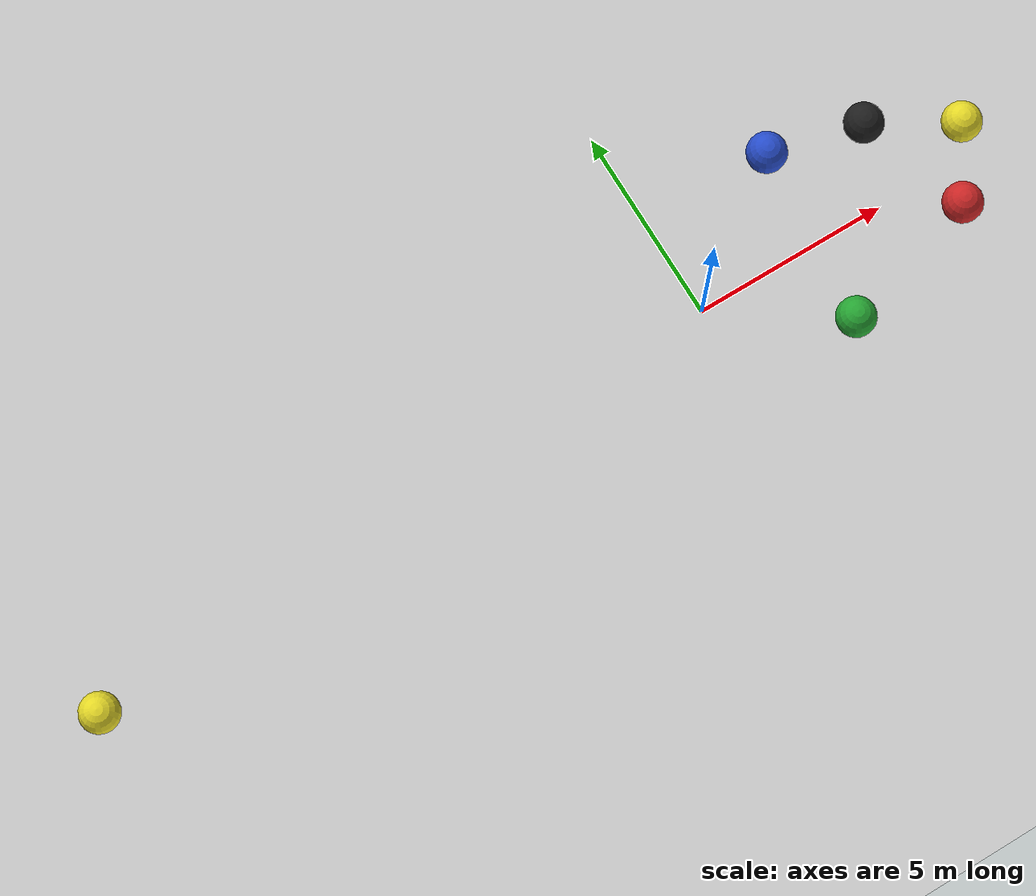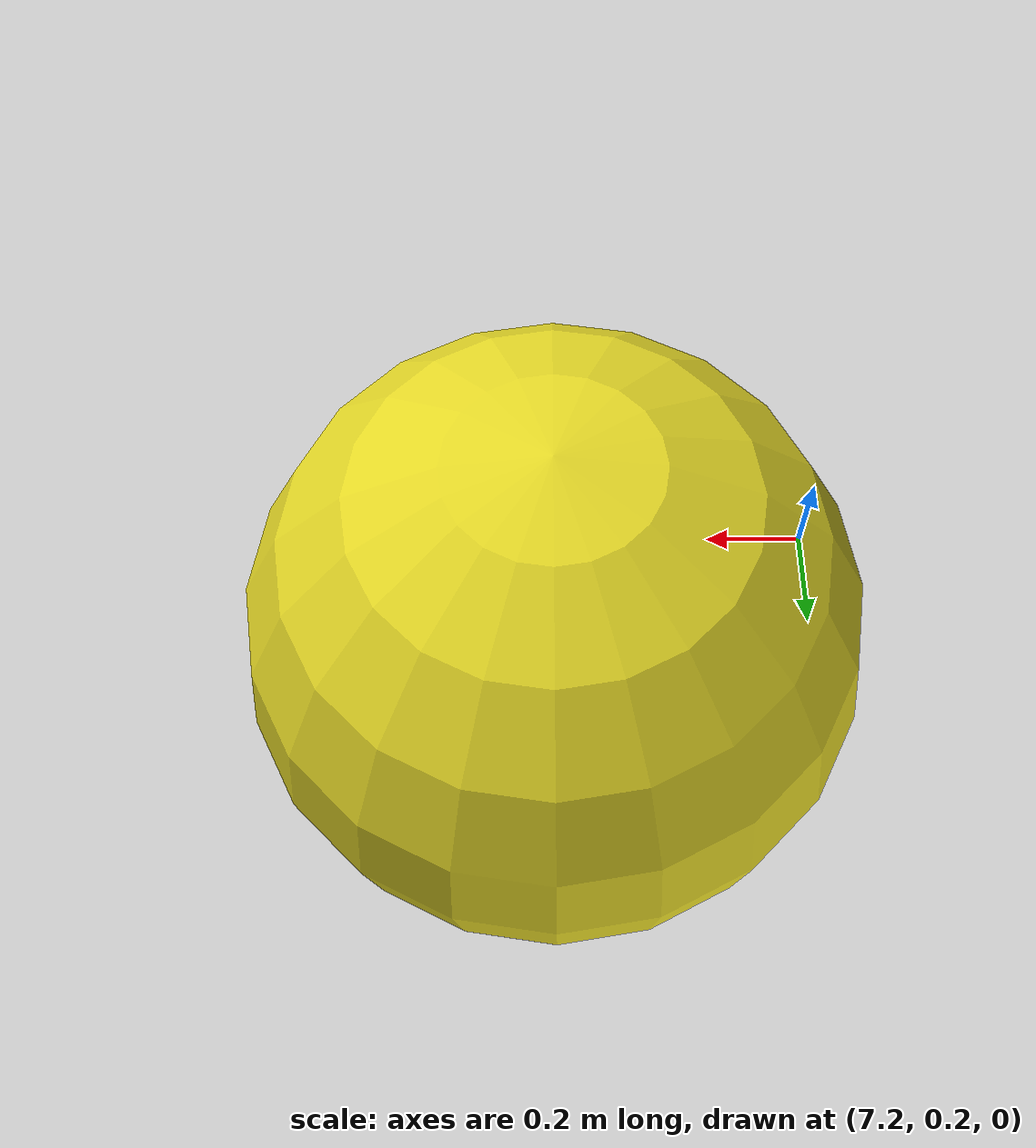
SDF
<sdf version="1.7">
 <world name="default">
  <light name="sun" type="directional">
   <pose>0 0 10 0 -0 0</pose>
   <diffuse>0.8 0.8 0.8 1</diffuse>
   <specular>0.2 0.2 0.2 1</specular>
   <attenuation>
    <range>1000</range>
    <constant>0.9</constant>
    <linear>0.01</linear>
    <quadratic>0.001</quadratic>
   </attenuation>
   <direction>-0.5 0.1 -0.9</direction>
   <spot><inner_angle>0</inner_angle><outer_angle>0</outer_angle><falloff>0</falloff></spot>
  </light>
  <model name="ground_plane">
   <static>1</static>
   <link name="link">
    <collision name="collision">
     <geometry><plane><normal>0 0 1</normal><size>100 100</size></plane></geometry>
     <surface>
      <contact><collide_bitmask>65535</collide_bitmask></contact>
      <friction><ode><mu>100</mu><mu2>50</mu2></ode></friction>
     </surface>
    </collision>
    <visual name="visual">
     <cast_shadows>0</cast_shadows>
     <geometry><plane><normal>0 0 1</normal><size>100 100</size></plane></geometry>
     <material>
      <script><uri>file://media/materials/scripts/gazebo.material</uri><name>Gazebo/Grey</name></script>
     </material>
    </visual>
   </link>
  </model>
  <gravity>0 0 0</gravity>
  <magnetic_field>6e-06 2.3e-05 -4.2e-05</magnetic_field>
  <atmosphere type="adiabatic"/>
  <physics type="ode">
   <max_step_size>0.001</max_step_size>
   <real_time_factor>1</real_time_factor>
   <real_time_update_rate>1000</real_time_update_rate>
  </physics>
  <scene><ambient>0.4 0.4 0.4 1</ambient><background>0.7 0.7 0.7 1</background><shadows>1</shadows></scene>
  <spherical_coordinates>
   <surface_model>EARTH_WGS84</surface_model>
   <latitude_deg>0</latitude_deg>
   <longitude_deg>0</longitude_deg>
   <elevation>0</elevation>
   <heading_deg>0</heading_deg>
  </spherical_coordinates>
  <model name="unit_sphere_clone">
   <pose>6.43465 -1.14853 1.13007 0 -0 0</pose>
   <link name="link">
    <inertial>
     <mass>1</mass>
     <inertia><ixx>0.1</ixx><ixy>0</ixy><ixz>0</ixz><iyy>0.1</iyy><iyz>0</iyz><izz>0.1</izz></inertia>
    </inertial>
    <collision name="collision"><geometry><sphere><radius>0.5</radius></sphere></geometry></collision>
    <visual name="visual">
     <geometry><sphere><radius>0.5</radius></sphere></geometry>
     <material>
      <script><name>Gazebo/Red</name><uri>file://media/materials/scripts/gazebo.material</uri></script>
     </material>
    </visual>
   </link>
  </model>
  <model name="unit_sphere_clone_0">
   <pose>5.70713 1.87799 0.5 0 -0 0</pose>
   <link name="link">
    <inertial>
     <mass>1</mass>
     <inertia><ixx>0.1</ixx><ixy>0</ixy><ixz>0</ixz><iyy>0.1</iyy><iyz>0</iyz><izz>0.1</izz></inertia>
    </inertial>
    <collision name="collision"><geometry><sphere><radius>0.5</radius></sphere></geometry></collision>
    <visual name="visual">
     <geometry><sphere><radius>0.5</radius></sphere></geometry>
     <material>
      <script><name>Gazebo/Black</name><uri>file://media/materials/scripts/gazebo.material</uri></script>
     </material>
    </visual>
   </link>
  </model>
  <model name="unit_sphere_clone_1">
   <pose>-16.7649 -1.05006 0.5 0 -0 0</pose>
   <link name="link">
    <inertial>
     <mass>1</mass>
     <inertia><ixx>0.1</ixx><ixy>0</ixy><ixz>0</ixz><iyy>0.1</iyy><iyz>0</iyz><izz>0.1</izz></inertia>
    </inertial>
    <collision name="collision"><geometry><sphere><radius>0.5</radius></sphere></geometry></collision>
    <visual name="visual">
     <geometry><sphere><radius>0.5</radius></sphere></geometry>
     <material>
      <script><name>Gazebo/Yellow</name><uri>file://media/materials/scripts/gazebo.material</uri></script>
     </material>
    </visual>
   </link>
  </model>
  <model name="unit_sphere_clone_2">
   <pose>2.94049 -2.08592 0.5 0 -0 0</pose>
   <link name="link">
    <inertial>
     <mass>1</mass>
     <inertia><ixx>0.1</ixx><ixy>0</ixy><ixz>0</ixz><iyy>0.1</iyy><iyz>0</iyz><izz>0.1</izz></inertia>
    </inertial>
    <collision name="collision"><geometry><sphere><radius>0.5</radius></sphere></geometry></collision>
    <visual name="visual">
     <geometry><sphere><radius>0.5</radius></sphere></geometry>
     <material>
      <script><name>Gazebo/Green</name><uri>file://media/materials/scripts/gazebo.material</uri></script>
     </material>
    </visual>
   </link>
  </model>
  <model name="unit_sphere">
   <link name="link">
    <inertial>
     <mass>1</mass>
     <inertia><ixx>0.1</ixx><ixy>0</ixy><ixz>0</ixz><iyy>0.1</iyy><iyz>0</iyz><izz>0.1</izz></inertia>
    </inertial>
    <visual name="visual">
     <geometry><sphere><radius>0.5</radius></sphere></geometry>
     <material>
      <script><name>Gazebo/Yellow</name><uri>file://media/materials/scripts/gazebo.material</uri></script>
      <shader type="pixel"/>
     </material>
    </visual>
    <collision name="collision">
     <geometry><sphere><radius>0.5</radius></sphere></geometry>
     <surface>
      <friction>
       <ode><mu>1</mu><mu2>1</mu2><fdir1>0 0 0</fdir1><slip1>0</slip1><slip2>0</slip2></ode>
       <torsional>
        <coefficient>1</coefficient>
        <patch_radius>0</patch_radius>
        <surface_radius>0</surface_radius>
        <use_patch_radius>1</use_patch_radius>
        <ode><slip>0</slip></ode>
       </torsional>
      </friction>
      <bounce><restitution_coefficient>0</restitution_coefficient><threshold>1e+06</threshold></bounce>
      <contact>
       <collide_without_contact>0</collide_without_contact>
       <collide_without_contact_bitmask>1</collide_without_contact_bitmask>
       <collide_bitmask>1</collide_bitmask>
       <ode>
        <soft_cfm>0</soft_cfm>
        <soft_erp>0.2</soft_erp>
        <kp>1e+13</kp>
        <kd>1</kd>
        <max_vel>0.01</max_vel>
        <min_depth>0</min_depth>
       </ode>
       <bullet>
        <split_impulse>1</split_impulse>
        <split_impulse_penetration_threshold>-0.01</split_impulse_penetration_threshold>
        <soft_cfm>0</soft_cfm>
        <soft_erp>0.2</soft_erp>
        <kp>1e+13</kp>
        <kd>1</kd>
       </bullet>
      </contact>
     </surface>
    </collision>
   </link>
   <static>0</static>
   <pose>7.72785 0.689788 0.5 0 -0 0</pose>
  </model>
  <model name="unit_sphere_0">
   <pose>3.06186 2.18347 1.5 0 -0 0</pose>
   <link name="link">
    <inertial>
     <mass>1</mass>
     <inertia><ixx>0.1</ixx><ixy>0</ixy><ixz>0</ixz><iyy>0.1</iyy><iyz>0</iyz><izz>0.1</izz></inertia>
    </inertial>
    <collision name="collision"><geometry><sphere><radius>0.5</radius></sphere></geometry></collision>
    <visual name="visual">
     <geometry><sphere><radius>0.5</radius></sphere></geometry>
     <material>
      <script><name>Gazebo/Blue</name><uri>file://media/materials/scripts/gazebo.material</uri></script>
     </material>
    </visual>
   </link>
  </model>
 </world>
</sdf>
